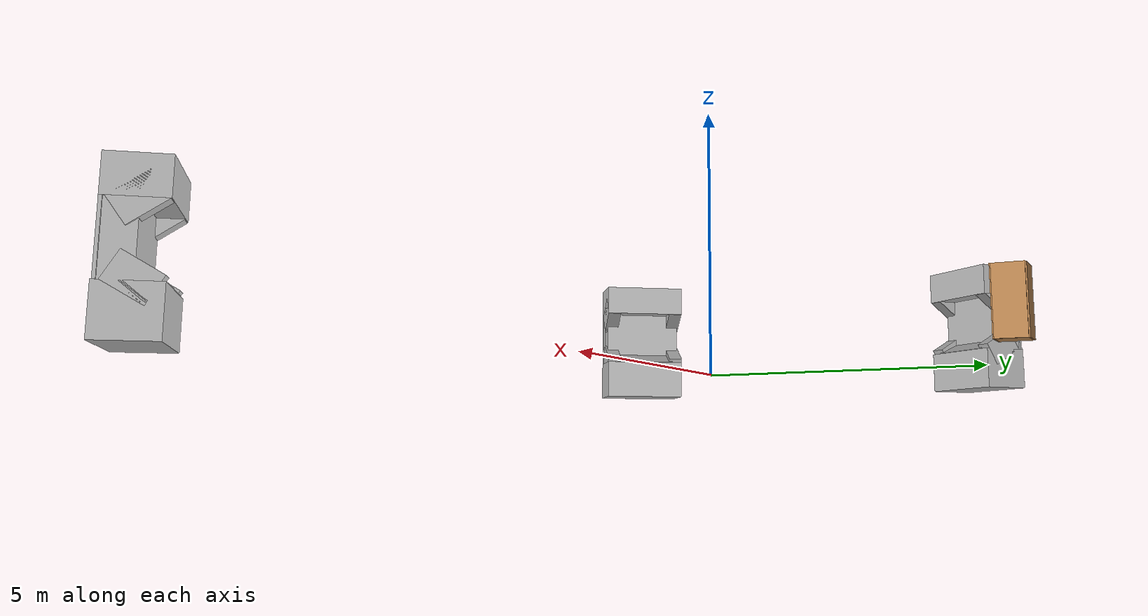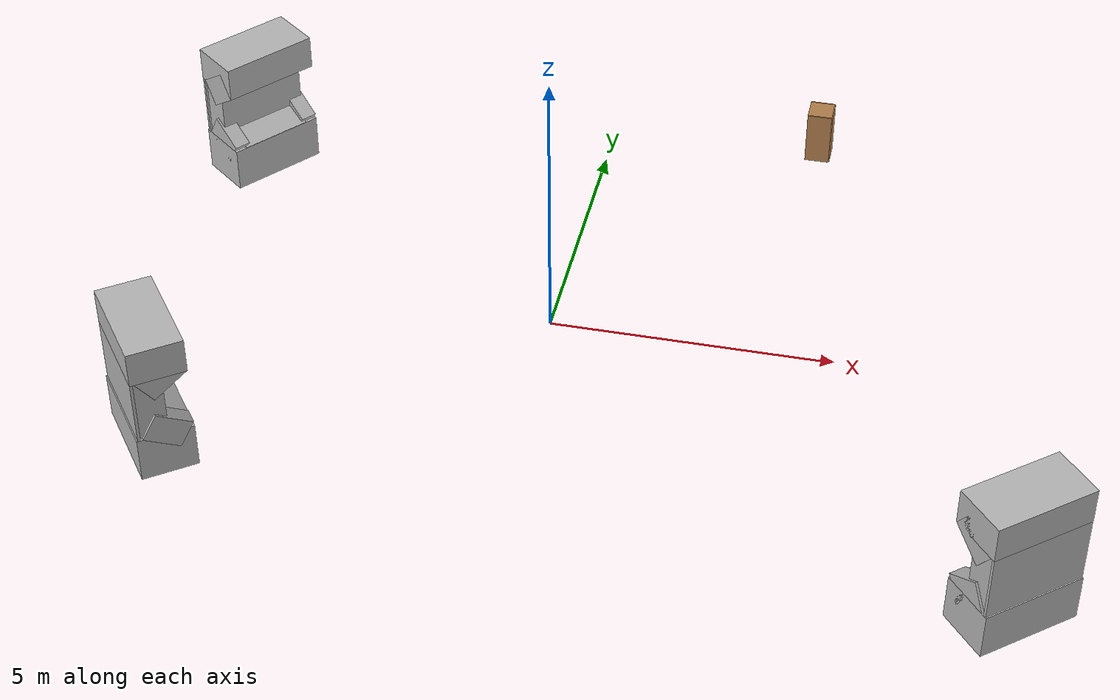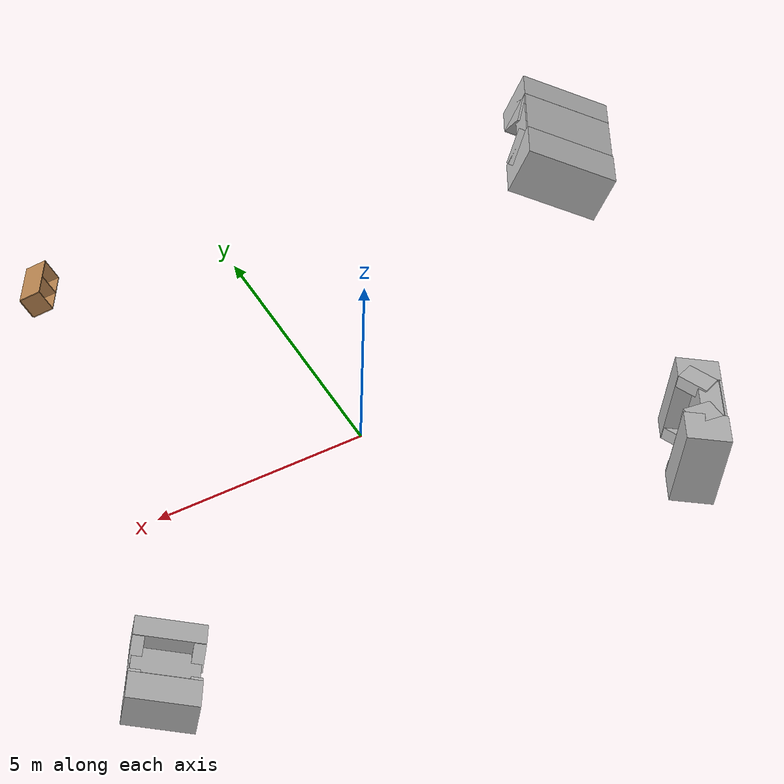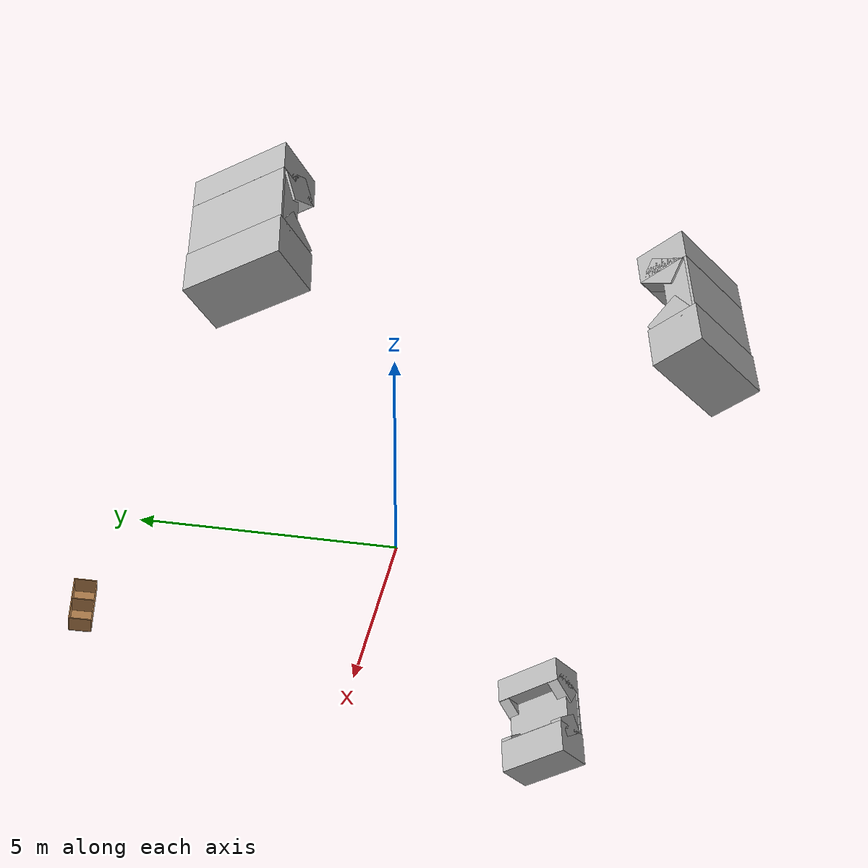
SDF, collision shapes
<?xml version='1.0'?>
<sdf version='1.7'>
  <model name='things_new'>
    <model name='cabinet'>
      <static>1</static>
      <link name='cabinet_bottom_plate'>
        <inertial>
          <pose>0 0 -1 0 -0 0</pose>
          <inertia>
            <ixx>2.05</ixx>
            <ixy>0</ixy>
            <ixz>0</ixz>
            <iyy>2.05</iyy>
            <iyz>0</iyz>
            <izz>2.05</izz>
          </inertia>
          <mass>25</mass>
        </inertial>
        <collision name='cabinet_bottom_plate_geom'>
          <pose>0 0 0.01 0 -0 0</pose>
          <geometry>
            <box>
              <size>0.45 0.45 0.02</size>
            </box>
          </geometry>
        </collision>
        <visual name='cabinet_bottom_plate_geom_visual'>
          <pose>0 0 0.01 0 -0 0</pose>
          <geometry>
            <box>
              <size>0.45 0.45 0.02</size>
            </box>
          </geometry>
          <material>
            <script>
              <uri>file://media/materials/scripts/gazebo.material</uri>
              <name>Gazebo/Wood</name>
            </script>
          </material>
        </visual>
        <collision name='cabinet_bottom_plate_geom_cabinet_back_plate'>
          <pose>0.235 0 0.51 0 -0 0</pose>
          <geometry>
            <box>
              <size>0.02 0.45 1.02</size>
            </box>
          </geometry>
        </collision>
        <visual name='cabinet_bottom_plate_geom_cabinet_back_plate_visual'>
          <pose>0.235 0 0.51 0 -0 0</pose>
          <geometry>
            <box>
              <size>0.02 0.45 1.02</size>
            </box>
          </geometry>
          <material>
            <script>
              <uri>file://media/materials/scripts/gazebo.material</uri>
              <name>Gazebo/Wood</name>
            </script>
          </material>
        </visual>
        <collision name='cabinet_bottom_plate_geom_cabinet_left_plate'>
          <pose>0 0.235 0.51 0 -0 0</pose>
          <geometry>
            <box>
              <size>0.45 0.02 1.02</size>
            </box>
          </geometry>
        </collision>
        <visual name='cabinet_bottom_plate_geom_cabinet_left_plate_visual'>
          <pose>0 0.235 0.51 0 -0 0</pose>
          <geometry>
            <box>
              <size>0.45 0.02 1.02</size>
            </box>
          </geometry>
          <material>
            <script>
              <uri>file://media/materials/scripts/gazebo.material</uri>
              <name>Gazebo/Wood</name>
            </script>
          </material>
        </visual>
        <collision name='cabinet_bottom_plate_geom_cabinet_middle_plate'>
          <pose>0 0 0.51 0 -0 0</pose>
          <geometry>
            <box>
              <size>0.45 0.45 0.02</size>
            </box>
          </geometry>
        </collision>
        <visual name='cabinet_bottom_plate_geom_cabinet_middle_plate_visual'>
          <pose>0 0 0.51 0 -0 0</pose>
          <geometry>
            <box>
              <size>0.45 0.45 0.02</size>
            </box>
          </geometry>
          <material>
            <script>
              <uri>file://media/materials/scripts/gazebo.material</uri>
              <name>Gazebo/Wood</name>
            </script>
          </material>
        </visual>
        <collision name='cabinet_bottom_plate_geom_cabinet_right_plate'>
          <pose>0 -0.235 0.51 0 -0 0</pose>
          <geometry>
            <box>
              <size>0.45 0.02 1.02</size>
            </box>
          </geometry>
        </collision>
        <visual name='cabinet_bottom_plate_geom_cabinet_right_plate_visual'>
          <pose>0 -0.235 0.51 0 -0 0</pose>
          <geometry>
            <box>
              <size>0.45 0.02 1.02</size>
            </box>
          </geometry>
          <material>
            <script>
              <uri>file://media/materials/scripts/gazebo.material</uri>
              <name>Gazebo/Wood</name>
            </script>
          </material>
        </visual>
        <collision name='cabinet_bottom_plate_geom_cabinet_top_plate'>
          <pose>0 0 1.01 0 -0 0</pose>
          <geometry>
            <box>
              <size>0.45 0.45 0.02</size>
            </box>
          </geometry>
        </collision>
        <visual name='cabinet_bottom_plate_geom_cabinet_top_plate_visual'>
          <pose>0 0 1.01 0 -0 0</pose>
          <geometry>
            <box>
              <size>0.45 0.45 0.02</size>
            </box>
          </geometry>
          <material>
            <script>
              <uri>file://media/materials/scripts/gazebo.material</uri>
              <name>Gazebo/Wood</name>
            </script>
          </material>
        </visual>
      </link>
      <pose>3.91818 6.06352 0 0 -0 0</pose>
    </model>
    <model name='control_console'>
      <static>1</static>
      <link name='link'>
        <visual name='visual'>
          <geometry>
            <mesh>
              <uri>model://control_console/meshes/console.dae</uri>
            </mesh>
          </geometry>
        </visual>
        <visual name='backvisual'>
          <pose>0 0.29388 1.30113 0 -0 0</pose>
          <geometry>
            <box>
              <size>1.78 0.05 2.60225</size>
            </box>
          </geometry>
        </visual>
        <collision name='back_collision'>
          <pose>0 0.29388 1.30113 0 -0 0</pose>
          <geometry>
            <box>
              <size>1.78 0.05 2.60225</size>
            </box>
          </geometry>
        </collision>
        <collision name='base_collision'>
          <pose>0 -0.14669 0.4128 0 -0 0</pose>
          <geometry>
            <box>
              <size>1.78872 0.97373 0.8256</size>
            </box>
          </geometry>
        </collision>
        <collision name='mid_collision'>
          <pose>0 0.04268 1.48248 0 -0 0</pose>
          <geometry>
            <box>
              <size>1.70162 0.51806 1.5</size>
            </box>
          </geometry>
        </collision>
        <collision name='top_collision'>
          <pose>0 -0.15709 2.31203 0 -0 0</pose>
          <geometry>
            <box>
              <size>1.78872 0.95292 0.62632</size>
            </box>
          </geometry>
        </collision>
        <collision name='panel_collision'>
          <pose>0 -0.36311 0.90329 0.428775 -0 0</pose>
          <geometry>
            <box>
              <size>1.33522 0.550273 0.1</size>
            </box>
          </geometry>
        </collision>
        <collision name='left_lower_shoulder_collision'>
          <pose>-0.7435 -0.19848 0.87 0.520485 -0 0</pose>
          <geometry>
            <box>
              <size>0.30172 0.7 0.5</size>
            </box>
          </geometry>
        </collision>
        <collision name='right_lower_shoulder_collision'>
          <pose>0.7435 -0.19848 0.87 0.520485 -0 0</pose>
          <geometry>
            <box>
              <size>0.30172 0.7 0.5</size>
            </box>
          </geometry>
        </collision>
        <collision name='left_upper_shoulder_collision'>
          <pose>-0.7435 -0.19152 1.99244 -0.620645 0 0</pose>
          <geometry>
            <box>
              <size>0.30172 0.7 0.5</size>
            </box>
          </geometry>
        </collision>
        <collision name='right_upper_shoulder_collision'>
          <pose>0.7435 -0.19152 1.99244 -0.620645 0 0</pose>
          <geometry>
            <box>
              <size>0.30172 0.7 0.5</size>
            </box>
          </geometry>
        </collision>
      </link>
      <pose>-5.88671 -4.36572 0 0 -0 2.20516</pose>
    </model>
    <model name='control_console_clone'>
      <static>1</static>
      <link name='link'>
        <visual name='visual'>
          <geometry>
            <mesh>
              <uri>model://control_console/meshes/console.dae</uri>
            </mesh>
          </geometry>
        </visual>
        <visual name='backvisual'>
          <pose>0 0.29388 1.30113 0 -0 0</pose>
          <geometry>
            <box>
              <size>1.78 0.05 2.60225</size>
            </box>
          </geometry>
        </visual>
        <collision name='back_collision'>
          <pose>0 0.29388 1.30113 0 -0 0</pose>
          <geometry>
            <box>
              <size>1.78 0.05 2.60225</size>
            </box>
          </geometry>
        </collision>
        <collision name='base_collision'>
          <pose>0 -0.14669 0.4128 0 -0 0</pose>
          <geometry>
            <box>
              <size>1.78872 0.97373 0.8256</size>
            </box>
          </geometry>
        </collision>
        <collision name='mid_collision'>
          <pose>0 0.04268 1.48248 0 -0 0</pose>
          <geometry>
            <box>
              <size>1.70162 0.51806 1.5</size>
            </box>
          </geometry>
        </collision>
        <collision name='top_collision'>
          <pose>0 -0.15709 2.31203 0 -0 0</pose>
          <geometry>
            <box>
              <size>1.78872 0.95292 0.62632</size>
            </box>
          </geometry>
        </collision>
        <collision name='panel_collision'>
          <pose>0 -0.36311 0.90329 0.428775 -0 0</pose>
          <geometry>
            <box>
              <size>1.33522 0.550273 0.1</size>
            </box>
          </geometry>
        </collision>
        <collision name='left_lower_shoulder_collision'>
          <pose>-0.7435 -0.19848 0.87 0.520485 -0 0</pose>
          <geometry>
            <box>
              <size>0.30172 0.7 0.5</size>
            </box>
          </geometry>
        </collision>
        <collision name='right_lower_shoulder_collision'>
          <pose>0.7435 -0.19848 0.87 0.520485 -0 0</pose>
          <geometry>
            <box>
              <size>0.30172 0.7 0.5</size>
            </box>
          </geometry>
        </collision>
        <collision name='left_upper_shoulder_collision'>
          <pose>-0.7435 -0.19152 1.99244 -0.620645 0 0</pose>
          <geometry>
            <box>
              <size>0.30172 0.7 0.5</size>
            </box>
          </geometry>
        </collision>
        <collision name='right_upper_shoulder_collision'>
          <pose>0.7435 -0.19152 1.99244 -0.620645 0 0</pose>
          <geometry>
            <box>
              <size>0.30172 0.7 0.5</size>
            </box>
          </geometry>
        </collision>
      </link>
      <pose>-6.50769 3.74788 0 0 -0 0.893589</pose>
    </model>
    <model name='control_console_clone_clone'>
      <static>1</static>
      <link name='link'>
        <visual name='visual'>
          <geometry>
            <mesh>
              <uri>model://control_console/meshes/console.dae</uri>
            </mesh>
          </geometry>
        </visual>
        <visual name='backvisual'>
          <pose>0 0.29388 1.30113 0 -0 0</pose>
          <geometry>
            <box>
              <size>1.78 0.05 2.60225</size>
            </box>
          </geometry>
        </visual>
        <collision name='back_collision'>
          <pose>0 0.29388 1.30113 0 -0 0</pose>
          <geometry>
            <box>
              <size>1.78 0.05 2.60225</size>
            </box>
          </geometry>
        </collision>
        <collision name='base_collision'>
          <pose>0 -0.14669 0.4128 0 -0 0</pose>
          <geometry>
            <box>
              <size>1.78872 0.97373 0.8256</size>
            </box>
          </geometry>
        </collision>
        <collision name='mid_collision'>
          <pose>0 0.04268 1.48248 0 -0 0</pose>
          <geometry>
            <box>
              <size>1.70162 0.51806 1.5</size>
            </box>
          </geometry>
        </collision>
        <collision name='top_collision'>
          <pose>0 -0.15709 2.31203 0 -0 0</pose>
          <geometry>
            <box>
              <size>1.78872 0.95292 0.62632</size>
            </box>
          </geometry>
        </collision>
        <collision name='panel_collision'>
          <pose>0 -0.36311 0.90329 0.428775 -0 0</pose>
          <geometry>
            <box>
              <size>1.33522 0.550273 0.1</size>
            </box>
          </geometry>
        </collision>
        <collision name='left_lower_shoulder_collision'>
          <pose>-0.7435 -0.19848 0.87 0.520485 -0 0</pose>
          <geometry>
            <box>
              <size>0.30172 0.7 0.5</size>
            </box>
          </geometry>
        </collision>
        <collision name='right_lower_shoulder_collision'>
          <pose>0.7435 -0.19848 0.87 0.520485 -0 0</pose>
          <geometry>
            <box>
              <size>0.30172 0.7 0.5</size>
            </box>
          </geometry>
        </collision>
        <collision name='left_upper_shoulder_collision'>
          <pose>-0.7435 -0.19152 1.99244 -0.620645 0 0</pose>
          <geometry>
            <box>
              <size>0.30172 0.7 0.5</size>
            </box>
          </geometry>
        </collision>
        <collision name='right_upper_shoulder_collision'>
          <pose>0.7435 -0.19152 1.99244 -0.620645 0 0</pose>
          <geometry>
            <box>
              <size>0.30172 0.7 0.5</size>
            </box>
          </geometry>
        </collision>
      </link>
      <pose>8.47621 -5.44569 0 0 -0 -2.4427</pose>
    </model>
    <static>0</static>
    <allow_auto_disable>1</allow_auto_disable>
  </model>
</sdf>
